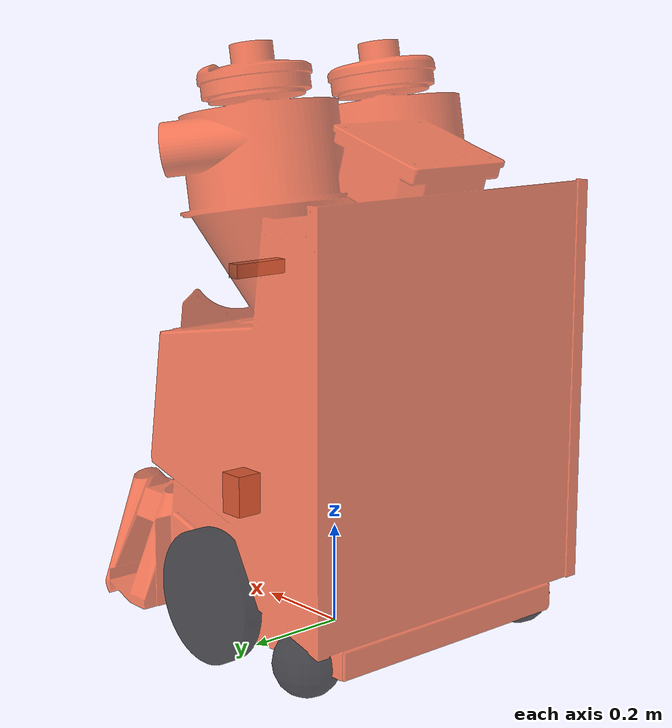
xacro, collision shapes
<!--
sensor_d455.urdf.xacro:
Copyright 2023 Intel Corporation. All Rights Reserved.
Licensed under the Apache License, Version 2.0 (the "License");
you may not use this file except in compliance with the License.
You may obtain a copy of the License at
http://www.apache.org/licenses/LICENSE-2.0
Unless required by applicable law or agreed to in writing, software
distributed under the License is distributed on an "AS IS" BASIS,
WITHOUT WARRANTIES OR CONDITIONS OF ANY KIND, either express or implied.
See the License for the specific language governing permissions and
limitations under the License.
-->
<?xml version="1.0"?>
<robot xmlns:xacro="http://www.ros.org/wiki/xacro" name="sucky_bringup">

    <xacro:include filename="$(find sucky_bringup)/urdf/robot_core.xacro"/>
    <xacro:include filename="$(find sucky_bringup)/urdf/ros2_control.xacro"/>
    <xacro:include filename="$(find sucky_bringup)/urdf/sensor_sick.xacro"/>
    <xacro:include filename="$(find sucky_bringup)/urdf/sensor_d455.urdf.xacro"/>

</robot>

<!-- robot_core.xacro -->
<robot name="sweeper" xmlns:xacro="http://ros.org/wiki/xacro">

  <xacro:include filename="intertial_macros.xacro"/>
  <xacro:include filename="$(find sucky_bringup)/urdf/sensor_d455.urdf.xacro"/>

  <!-- Define robot constants -->
  <xacro:property name="chassis_width" value="0.8636"/>
  <xacro:property name="chassis_length" value="0.889"/>
  <xacro:property name="chassis_height" value="0.527"/>
  <xacro:property name="chassis_mass" value="5"/>

  <xacro:property name="wheel_radius" value="0.127"/>
  <xacro:property name="wheel_thickness" value="0.038862"/>
  <xacro:property name="wheel_offset_y" value="0.287147"/>  <!-- (11.305") from center of axle to inside edge-->
  <xacro:property name="wheel_offset_z" value="0.0"/> <!--not used-->
  <xacro:property name="wheel_offset_x" value="0.325628"/> <!-- (12.82") from center of wheel to back edge of chasis-->
  <xacro:property name="wheel_mass" value=".5"/>

  <xacro:property name="omni_wheel_mass" value=".2"/>
  <xacro:property name="omni_wheel_radius" value="0.0635"/>
  <xacro:property name="omni_wheel_offset_z" value="0.0635"/> <!-- (2.5") center of wheel to center of main axle-->
  <xacro:property name="omni_wheel_offset_x" value="0.2406396"/> <!-- (9.474") center of wheel to center of main axle-->
  <xacro:property name="omni_wheel_offset_y" value="0.2752344"/> <!-- (10.836") center of wheel to center of main axle -->

  <!-- chasis bottom point is the back bottom metal frame near the motors -->
  <!-- mass inaccurate, only matters for simulation -->

  <!-- colors for RViz visualization-->
  <material name="orange">
    <color rgba="1 .3 .1 0.7" />
  </material>
  <material name="black">
    <color rgba="0 0 0 0.7" />
  </material>

  <!-- base footprint-->
  <link name="base_footprint"/>
  <!-- base link-->
  <link name="base_link"/>

  <!-- base_footprint link-->
  <joint name="base_footprint_joint" type="fixed">
    <parent link="base_footprint"/>
    <child link="base_link"/>
    <origin xyz="0 0 ${wheel_radius}" rpy="0 0 0"/>
  </joint>
  <!-- chassis link -->
  <joint name="chassis_joint" type="fixed">
    <parent link="base_link"/>
    <child link="chassis"/>
    <origin xyz="0 0 -0.127"/>
  </joint>

  <link name="chassis">
    <visual>
      <origin xyz="0 0 0" rpy="0 0 ${pi/2}"/>
      <geometry>
        <mesh filename="package://sucky_bringup/meshes/Sucky.stl" scale="1 1 1" />
      </geometry>
      <material name="orange"/>
    </visual>
    <collision>
      <origin xyz="0 0 0" rpy="0 0 ${pi/2}"/>
      <geometry>
        <mesh filename="package://sucky_bringup/meshes/Sucky.stl" scale="1 1 1" />
      </geometry>
    </collision>
  </link>

  <!-- LEFT WHEEL LINK -->
  <joint name="left_wheel_joint" type="continuous">
      <parent link="base_link"/>
      <child link="left_wheel"/>
      <origin xyz="0 ${wheel_offset_y} 0" rpy="0 0 0" />
      <axis xyz="0 1 0"/>
  </joint>

  <link name="left_wheel">
      <visual>
          <geometry>
              <mesh filename="package://sucky_bringup/meshes/Big_Wheel.stl" scale="0.001 0.001 0.001" />
          </geometry>
          <material name="black"/>
      </visual>
      <collision>
          <geometry>
              <mesh filename="package://sucky_bringup/meshes/Big_Wheel.stl" scale="0.001 0.001 0.001" />
          </geometry>
      </collision>
  </link>

  <!-- RIGHT WHEEL LINK -->
  <joint name="right_wheel_joint" type="continuous"> <!-- change back to continuous-->
      <parent link="base_link"/>
      <child link="right_wheel"/>
      <origin xyz="0 ${-wheel_offset_y} 0" rpy="0 0 0" />
      <axis xyz="0 1 0"/>
  </joint>

  <link name="right_wheel">
      <visual>
          <geometry>
              <mesh filename="package://sucky_bringup/meshes/Big_Wheel.stl" scale="0.001 0.001 0.001" />
          </geometry>
          <material name="black"/>
      </visual>
      <collision>
          <geometry>
              <mesh filename="package://sucky_bringup/meshes/Big_Wheel.stl" scale="0.001 0.001 0.001" />
          </geometry>
      </collision>
  </link>

  <!-- LEFT OMNI WHEEL LINK -->
  <joint name="left_omni_wheel_joint" type="fixed">
      <parent link="base_link"/>
      <child link="left_omni_wheel"/>
      <origin xyz="${-omni_wheel_offset_x} ${omni_wheel_offset_y} ${-omni_wheel_offset_z}" rpy="0 0 0"/>
  </joint>

  <link name="left_omni_wheel">
      <visual>
          <geometry>
              <sphere radius="${omni_wheel_radius}"/>
          </geometry>
          <material name="black"/>
      </visual>
      <collision>
          <geometry>
              <sphere radius="${omni_wheel_radius}"/>
          </geometry>
      </collision>
  </link>

  <!-- RIGHT OMNI WHEEL LINK -->
  <joint name="right_omni_wheel_joint" type="fixed">
      <parent link="base_link"/>
      <child link="right_omni_wheel"/>
      <origin xyz="${-omni_wheel_offset_x} ${-omni_wheel_offset_y} ${-omni_wheel_offset_z}" rpy="0 0 0"/>
  </joint>

  <link name="right_omni_wheel">
      <visual>
          <geometry>
              <sphere radius="${omni_wheel_radius}"/>
          </geometry>
          <material name="black"/>
      </visual>
      <collision>
          <geometry>
              <sphere radius="${omni_wheel_radius}"/>
          </geometry>
      </collision>
  </link>

  <xacro:sensor_d455 parent="base_link" name="d455" use_nominal_extrinsics="true">
    <origin xyz="0.237871 0 0.5441188" rpy="0 0 0"/>
  </xacro:sensor_d455>

</robot>

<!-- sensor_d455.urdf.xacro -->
<!--
This is the URDF model for the Intel RealSense 430 camera, in its
aluminum peripherial evaluation case.
-->

<robot xmlns:xacro="http://ros.org/wiki/xacro">
  <!-- Includes -->
  <xacro:include filename="$(find sucky_bringup)/urdf/sensor_d455_materials.urdf.xacro" />
  <xacro:include filename="$(find sucky_bringup)/urdf/sensor_d455_usb_plug.urdf.xacro" />

  <xacro:macro name="sensor_d455" params="parent *origin name:=camera use_nominal_extrinsics:=false">
    <xacro:arg name="add_plug" default="false" />
    <xacro:property name="M_PI" value="3.1415926535897931" />

    <!-- The following values are approximate, and the camera node
     publishing TF values with actual calibrated camera extrinsic values -->
    <xacro:property name="d455_cam_depth_to_infra1_offset" value="0.0"/>
    <xacro:property name="d455_cam_depth_to_infra2_offset" value="-0.095"/>
    <xacro:property name="d455_cam_depth_to_color_offset" value="-0.059"/>

    <!-- The following values model the aluminum peripherial case for the
  	d455 camera, with the camera joint represented by the actual
  	peripherial camera tripod mount -->
    <xacro:property name="d455_cam_width" value="0.124"/>
    <xacro:property name="d455_cam_height" value="0.029"/>
    <xacro:property name="d455_cam_depth" value="0.026"/>
    <xacro:property name="d455_cam_mount_from_center_offset" value="0.0158"/>
    <!-- glass cover is 0.1 mm inwards from front aluminium plate -->
    <xacro:property name="d455_glass_to_front" value="0.1e-3"/>
    <!-- see datasheet Revision 009, Fig. 4-4 page 68 -->
    <xacro:property name="d455_zero_depth_to_glass" value="4.55e-3"/>
    <!-- convenience precomputation to avoid clutter-->
    <xacro:property name="d455_mesh_x_offset" value="${d455_cam_mount_from_center_offset-d455_glass_to_front-d455_zero_depth_to_glass}"/>

    <!-- The following offset is relative to the physical d455 camera peripherial
  	camera tripod mount -->
    <xacro:property name="d455_cam_depth_px" value="${d455_cam_mount_from_center_offset}"/>
    <xacro:property name="d455_cam_depth_py" value="0.0475"/>
    <xacro:property name="d455_cam_depth_pz" value="${d455_cam_height/2}"/>

    <!-- camera body, with origin at bottom screw mount -->
    <joint name="${name}_joint" type="fixed">
      <xacro:insert_block name="origin" />
      <parent link="${parent}"/>
      <child link="${name}_bottom_screw_frame" />
    </joint>
    <link name="${name}_bottom_screw_frame"/>

    <joint name="${name}_link_joint" type="fixed">
      <origin xyz="${d455_mesh_x_offset} ${d455_cam_depth_py} ${d455_cam_depth_pz}" rpy="0 0 0"/>
      <parent link="${name}_bottom_screw_frame"/>
      <child link="${name}_link" />
    </joint>

    <link name="${name}_link">
      <visual>
        <!-- the mesh origin is at front plate in between the two infrared camera axes -->
        <origin xyz="${d455_zero_depth_to_glass + d455_glass_to_front} ${-d455_cam_depth_py} 0" rpy="${M_PI/2} 0 ${M_PI/2}"/>
        <geometry>
	        <mesh filename="package://sucky_bringup/meshes/d455.stl" scale="0.001 0.001 0.001" />
        </geometry>
        <material name="aluminum"/>
      </visual>
      <collision>
        <origin xyz="${d455_zero_depth_to_glass-d455_cam_depth/2} ${-d455_cam_depth_py} 0" rpy="0 0 0"/>
        <geometry>
          <box size="${d455_cam_depth} ${d455_cam_width} ${d455_cam_height}"/>
        </geometry>
      </collision>
      <inertial>
        <!-- The following are not reliable values, and should not be used for modeling -->
        <mass value="0.072" />
        <origin xyz="0 0 0" />
        <inertia ixx="0.003881243" ixy="0.0" ixz="0.0" iyy="0.000498940" iyz="0.0" izz="0.003879257" />
      </inertial>
    </link>

    <gazebo reference="${name}_link">
        <material>Gazebo/Grey</material>
    </gazebo>

    <!-- Use the nominal extrinsics between camera frames if the calibrated extrinsics aren't being published. e.g. running the device in simulation  -->
    <xacro:if value="${use_nominal_extrinsics}">
      <!-- camera depth joints and links -->
      <joint name="${name}_depth_joint" type="fixed">
        <origin xyz="0 0 0" rpy="0 0 0"/>
        <parent link="${name}_link"/>
        <child link="${name}_depth_frame" />
      </joint>
      <link name="${name}_depth_frame"/>

      <joint name="${name}_depth_optical_joint" type="fixed">
        <origin xyz="0 0 0" rpy="${-M_PI/2} 0 ${-M_PI/2}" />
        <parent link="${name}_depth_frame" />
        <child link="${name}_depth_optical_frame" />
      </joint>
      <link name="${name}_depth_optical_frame"/>

      <!-- camera left IR joints and links -->
      <joint name="${name}_infra1_joint" type="fixed">
        <origin xyz="0 ${d455_cam_depth_to_infra1_offset} 0" rpy="0 0 0" />
        <parent link="${name}_link" />
        <child link="${name}_infra1_frame" />
      </joint>
      <link name="${name}_infra1_frame"/>

      <joint name="${name}_infra1_optical_joint" type="fixed">
        <origin xyz="0 0 0" rpy="${-M_PI/2} 0 ${-M_PI/2}" />
        <parent link="${name}_infra1_frame" />
        <child link="${name}_infra1_optical_frame" />
      </joint>
      <link name="${name}_infra1_optical_frame"/>

      <!-- camera right IR joints and links -->
      <joint name="${name}_infra2_joint" type="fixed">
        <origin xyz="0 ${d455_cam_depth_to_infra2_offset} 0" rpy="0 0 0" />
        <parent link="${name}_link" />
        <child link="${name}_infra2_frame" />
      </joint>
      <link name="${name}_infra2_frame"/>

      <joint name="${name}_infra2_optical_joint" type="fixed">
        <origin xyz="0 0 0" rpy="${-M_PI/2} 0 ${-M_PI/2}" />
        <parent link="${name}_infra2_frame" />
        <child link="${name}_infra2_optical_frame" />
      </joint>
      <link name="${name}_infra2_optical_frame"/>

      <!-- camera color joints and links -->
      <joint name="${name}_color_joint" type="fixed">
        <origin xyz="0 ${d455_cam_depth_to_color_offset} 0" rpy="0 0 0" />
        <parent link="${name}_link" />
        <child link="${name}_color_frame" />
      </joint>
      <link name="${name}_color_frame"/>

      <joint name="${name}_color_optical_joint" type="fixed">
        <origin xyz="0 0 0" rpy="${-M_PI/2} 0 ${-M_PI/2}" />
        <parent link="${name}_color_frame" />
        <child link="${name}_color_optical_frame" />
      </joint>
      <link name="${name}_color_optical_frame"/>

      <!-- IMU -->
      <!-- see datasheet Revision 009, page 114 -->
      <xacro:property name="d455_imu_px" value="-0.01602"/>
      <xacro:property name="d455_imu_py" value="-0.03022"/>
      <xacro:property name="d455_imu_pz" value="+0.0074"/>

      <link name="${name}_accel_frame" />
      <link name="${name}_accel_optical_frame" />
      <link name="${name}_gyro_frame" />
      <link name="${name}_gyro_optical_frame" />
      <link name="${name}_imu_optical_frame" />

      <joint name="${name}_accel_joint" type="fixed">
        <origin xyz = "${d455_imu_px} ${d455_imu_py} ${d455_imu_pz}" rpy = "0 0 0" />
        <parent link="${name}_link" />
        <child link="${name}_accel_frame" />
      </joint>

      <joint name="${name}_accel_optical_joint" type="fixed">
        <origin xyz = "0 0 0" rpy = "${-M_PI/2} 0 ${-M_PI/2}" />
        <parent link="${name}_accel_frame" />
        <child link="${name}_accel_optical_frame" />
      </joint>

      <joint name="${name}_gyro_joint" type="fixed">
        <origin xyz = "${d455_imu_px} ${d455_imu_py} ${d455_imu_pz}" rpy = "0 0 0" />
        <parent link="${name}_link" />
        <child link="${name}_gyro_frame" />
      </joint>

      <joint name="${name}_gyro_optical_joint" type="fixed">
        <origin xyz = "0 0 0" rpy = "${-M_PI/2} 0 ${-M_PI/2}" />
        <parent link="${name}_gyro_frame" />
        <child link="${name}_gyro_optical_frame" />
      </joint>

      <joint name="${name}_imu_optical_joint" type="fixed">
        <origin xyz = "0 0 0" rpy = "0 0 0" />
        <parent link="${name}_gyro_optical_frame" />
        <child link="${name}_imu_optical_frame" />
      </joint>
    </xacro:if>

    <xacro:if value="$(arg add_plug)">
      <xacro:usb_plug parent="${name}_link" name="${name}_usb_plug">
        <origin xyz="${-0.00406-d455_cam_depth_px} ${-0.03701-d455_cam_depth_py} ${-d455_cam_depth_pz}" rpy="${M_PI/2} 0 0"/>
      </xacro:usb_plug>
    </xacro:if>
  </xacro:macro>
</robot>

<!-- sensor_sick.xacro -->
<robot name="sweeper" xmlns:xacro="http://ros.org/wiki/xacro">

    <material name="grey">
        <color rgba="0.5 0.5 0.5 1" />
    </material>

    <link name="sick_link">
        <visual>
            <origin xyz="0 0 0" rpy="0 0 0"/>
            <geometry>
                <mesh filename="package://sucky_bringup/meshes/sick781.stl" />
            </geometry>
            <material name="grey"/>
        </visual>

        <collision>
            <origin xyz="-0.00 0 -0.02" rpy="0 0 0"/>
            <geometry>
                <box size="0.057 0.057 0.089"/>
            </geometry>
        </collision>

        <inertial>
            <origin xyz="0 0 0" rpy="0 0 0"/>
            <mass value="0.035"/>
            <inertia ixx="0.001"  ixy="0"  ixz="0" iyy="0.001" iyz="0" izz="0.001" />
        </inertial>
    </link>

    <joint name="sick_joint" type="fixed">
        <parent link="base_link"/>
        <child link="sick_link"/>
        <origin xyz=".3 0 .05" rpy="${pi} 0 0"/>
    </joint>

    <gazebo reference="sick_link">
        <material>Gazebo/Grey</material>
    </gazebo>
</robot>
